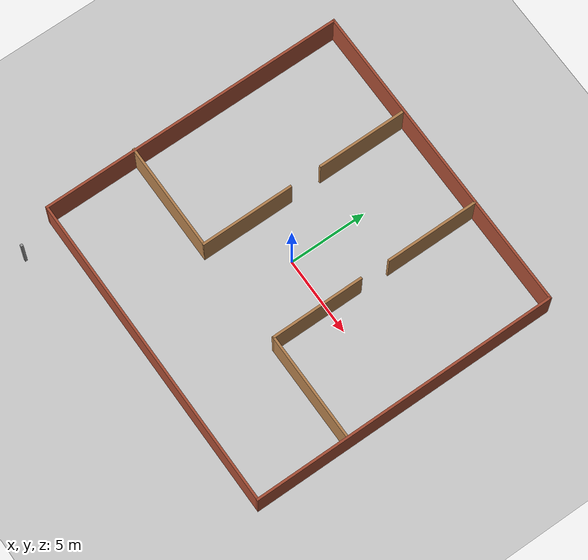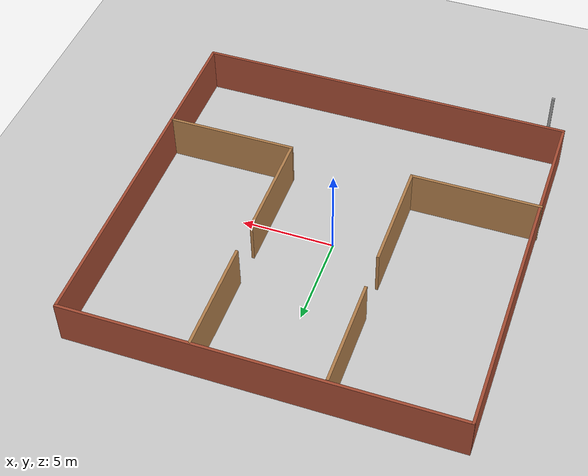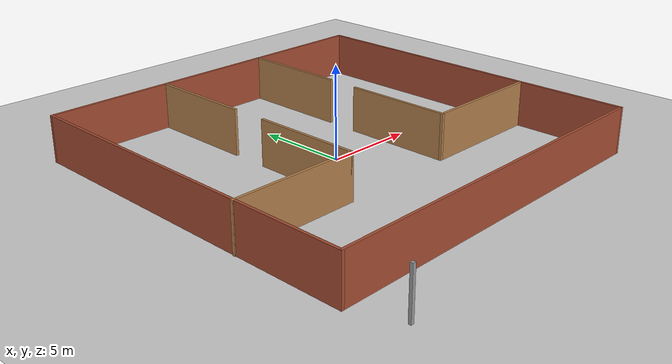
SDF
<sdf version="1.7">
 <world name="default">
  <light name="sun" type="directional">
   <pose>0 0 10 0 -0 0</pose>
   <diffuse>0.8 0.8 0.8 1</diffuse>
   <specular>0.2 0.2 0.2 1</specular>
   <attenuation>
    <range>1000</range>
    <constant>0.9</constant>
    <linear>0.01</linear>
    <quadratic>0.001</quadratic>
   </attenuation>
   <direction>-0.5 0.1 -0.9</direction>
   <spot><inner_angle>0</inner_angle><outer_angle>0</outer_angle><falloff>0</falloff></spot>
  </light>
  <model name="ground_plane">
   <static>1</static>
   <link name="link">
    <collision name="collision">
     <geometry><plane><normal>0 0 1</normal><size>100 100</size></plane></geometry>
     <surface>
      <contact><collide_bitmask>65535</collide_bitmask></contact>
      <friction><ode><mu>100</mu><mu2>50</mu2></ode></friction>
     </surface>
    </collision>
    <visual name="visual">
     <cast_shadows>0</cast_shadows>
     <geometry><plane><normal>0 0 1</normal><size>100 100</size></plane></geometry>
     <material>
      <script><uri>file://media/materials/scripts/gazebo.material</uri><name>Gazebo/Grey</name></script>
     </material>
    </visual>
   </link>
  </model>
  <gravity>0 0 -9.8</gravity>
  <magnetic_field>6e-06 2.3e-05 -4.2e-05</magnetic_field>
  <atmosphere type="adiabatic"/>
  <physics type="ode">
   <max_step_size>0.001</max_step_size>
   <real_time_factor>1</real_time_factor>
   <real_time_update_rate>1000</real_time_update_rate>
  </physics>
  <scene><ambient>0.4 0.4 0.4 1</ambient><background>0.7 0.7 0.7 1</background><shadows>1</shadows></scene>
  <audio><device>default</device></audio>
  <spherical_coordinates>
   <surface_model>EARTH_WGS84</surface_model>
   <latitude_deg>0</latitude_deg>
   <longitude_deg>0</longitude_deg>
   <elevation>0</elevation>
   <heading_deg>0</heading_deg>
  </spherical_coordinates>
  <model name="mobilerobot_world">
   <pose>0.344332 -1.10189 0 0 -0 0</pose>
   <link name="Wall_12">
    <collision name="Wall_12_Collision">
     <geometry><box><size>20.5 0.15 2.5</size></box></geometry>
     <pose>0 0 1.25 0 -0 0</pose>
    </collision>
    <visual name="Wall_12_Visual">
     <pose>0 0 1.25 0 -0 0</pose>
     <geometry><box><size>20.5 0.15 2.5</size></box></geometry>
     <material>
      <script><uri>file://media/materials/scripts/gazebo.material</uri><name>Gazebo/Bricks</name></script>
      <ambient>1 1 1 1</ambient>
     </material>
     <meta><layer>0</layer></meta>
    </visual>
    <pose>0.023262 10.995 0 0 -0 0</pose>
   </link>
   <link name="Wall_14">
    <collision name="Wall_14_Collision">
     <geometry><box><size>19.75 0.15 2.5</size></box></geometry>
     <pose>0 0 1.25 0 -0 0</pose>
    </collision>
    <visual name="Wall_14_Visual">
     <pose>0 0 1.25 0 -0 0</pose>
     <geometry><box><size>19.75 0.15 2.5</size></box></geometry>
     <material>
      <script><uri>file://media/materials/scripts/gazebo.material</uri><name>Gazebo/Bricks</name></script>
      <ambient>1 1 1 1</ambient>
     </material>
     <meta><layer>0</layer></meta>
    </visual>
    <pose>10.1983 1.19498 0 0 -0 -1.5708</pose>
   </link>
   <link name="Wall_16">
    <collision name="Wall_16_Collision">
     <geometry><box><size>7 0.15 2.5</size></box></geometry>
     <pose>0 0 1.25 0 -0 0</pose>
    </collision>
    <visual name="Wall_16_Visual">
     <pose>0 0 1.25 0 -0 0</pose>
     <geometry><box><size>7 0.15 2.5</size></box></geometry>
     <material>
      <script><uri>file://media/materials/scripts/gazebo.material</uri><name>Gazebo/Wood</name></script>
      <ambient>1 1 1 1</ambient>
     </material>
     <meta><layer>0</layer></meta>
    </visual>
    <pose>-6.77326 -2.72957 0 0 -0 0</pose>
   </link>
   <link name="Wall_17">
    <collision name="Wall_17_Collision">
     <geometry><box><size>6 0.15 2.5</size></box></geometry>
     <pose>0 0 1.25 0 -0 0</pose>
    </collision>
    <visual name="Wall_17_Visual">
     <pose>0 0 1.25 0 -0 0</pose>
     <geometry><box><size>6 0.15 2.5</size></box></geometry>
     <material>
      <script><uri>file://media/materials/scripts/gazebo.material</uri><name>Gazebo/Wood</name></script>
      <ambient>1 1 1 1</ambient>
     </material>
     <meta><layer>0</layer></meta>
    </visual>
    <pose>-3.34826 0.19543 0 0 -0 1.5708</pose>
   </link>
   <link name="Wall_19">
    <collision name="Wall_19_Collision">
     <geometry><box><size>5.75 0.15 2.5</size></box></geometry>
     <pose>0 0 1.25 0 -0 0</pose>
    </collision>
    <visual name="Wall_19_Visual">
     <pose>0 0 1.25 0 -0 0</pose>
     <geometry><box><size>5.75 0.15 2.5</size></box></geometry>
     <material>
      <script><uri>file://media/materials/scripts/gazebo.material</uri><name>Gazebo/Wood</name></script>
      <ambient>1 1 1 1</ambient>
     </material>
     <meta><layer>0</layer></meta>
    </visual>
    <pose>-3.35925 8.02602 0 0 -0 1.5708</pose>
   </link>
   <link name="Wall_23">
    <collision name="Wall_23_Collision">
     <geometry><box><size>7 0.15 2.5</size></box></geometry>
     <pose>0 0 1.25 0 -0 0</pose>
    </collision>
    <visual name="Wall_23_Visual">
     <pose>0 0 1.25 0 -0 0</pose>
     <geometry><box><size>7 0.15 2.5</size></box></geometry>
     <material>
      <script><uri>file://media/materials/scripts/gazebo.material</uri><name>Gazebo/Wood</name></script>
      <ambient>1 1 1 1</ambient>
     </material>
     <meta><layer>0</layer></meta>
    </visual>
    <pose>6.70769 -2.68305 0 0 -0 3.14159</pose>
   </link>
   <link name="Wall_24">
    <collision name="Wall_24_Collision">
     <geometry><box><size>6 0.15 2.5</size></box></geometry>
     <pose>0 0 1.25 0 -0 0</pose>
    </collision>
    <visual name="Wall_24_Visual">
     <pose>0 0 1.25 0 -0 0</pose>
     <geometry><box><size>6 0.15 2.5</size></box></geometry>
     <material>
      <script><uri>file://media/materials/scripts/gazebo.material</uri><name>Gazebo/Wood</name></script>
      <ambient>1 1 1 1</ambient>
     </material>
     <meta><layer>0</layer></meta>
    </visual>
    <pose>3.28269 0.241954 0 0 -0 1.5708</pose>
   </link>
   <link name="Wall_28">
    <collision name="Wall_28_Collision">
     <geometry><box><size>6 0.15 2.5</size></box></geometry>
     <pose>0 0 1.25 0 -0 0</pose>
    </collision>
    <visual name="Wall_28_Visual">
     <pose>0 0 1.25 0 -0 0</pose>
     <geometry><box><size>6 0.15 2.5</size></box></geometry>
     <material>
      <script><uri>file://media/materials/scripts/gazebo.material</uri><name>Gazebo/Wood</name></script>
      <ambient>1 1 1 1</ambient>
     </material>
     <meta><layer>0</layer></meta>
    </visual>
    <pose>3.3402 8.01145 0 0 -0 1.5708</pose>
   </link>
   <link name="Wall_4">
    <collision name="Wall_4_Collision">
     <geometry><box><size>0.16 0.15 2.5</size></box></geometry>
     <pose>0 0 1.25 0 -0 0</pose>
    </collision>
    <visual name="Wall_4_Visual">
     <pose>0 0 1.25 0 -0 0</pose>
     <geometry><box><size>0.16 0.15 2.5</size></box></geometry>
     <material>
      <script><uri>file://media/materials/scripts/gazebo.material</uri><name>Gazebo/Grey</name></script>
      <ambient>1 1 1 1</ambient>
     </material>
     <meta><layer>0</layer></meta>
    </visual>
    <pose>-9.09947 -10.995 0 0 -0 0</pose>
   </link>
   <link name="Wall_7">
    <collision name="Wall_7_Collision">
     <geometry><box><size>19.75 0.15 2.5</size></box></geometry>
     <pose>0 0 1.25 0 -0 0</pose>
    </collision>
    <visual name="Wall_7_Visual">
     <pose>0 0 1.25 0 -0 0</pose>
     <geometry><box><size>19.75 0.15 2.5</size></box></geometry>
     <material>
      <script><uri>file://media/materials/scripts/gazebo.material</uri><name>Gazebo/Bricks</name></script>
      <ambient>1 1 1 1</ambient>
     </material>
     <meta><layer>0</layer></meta>
    </visual>
    <pose>-10.1517 1.19498 0 0 -0 -1.5708</pose>
   </link>
   <link name="Wall_8">
    <collision name="Wall_8_Collision">
     <geometry><box><size>20.3896 0.15 2.5</size></box></geometry>
     <pose>0 0 1.25 0 -0 0</pose>
    </collision>
    <visual name="Wall_8_Visual">
     <pose>0 0 1.25 0 -0 0</pose>
     <geometry><box><size>20.3896 0.15 2.5</size></box></geometry>
     <material>
      <script><uri>file://media/materials/scripts/gazebo.material</uri><name>Gazebo/Bricks</name></script>
      <ambient>1 1 1 1</ambient>
     </material>
     <meta><layer>0</layer></meta>
    </visual>
    <pose>0.014571 -8.60501 0 0 -0 0</pose>
   </link>
   <static>1</static>
  </model>
 </world>
</sdf>
